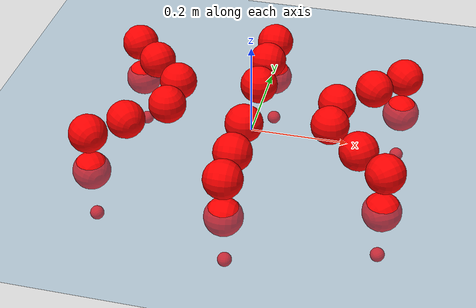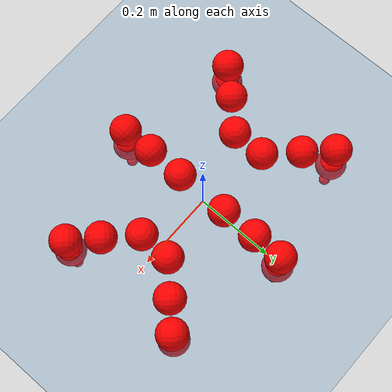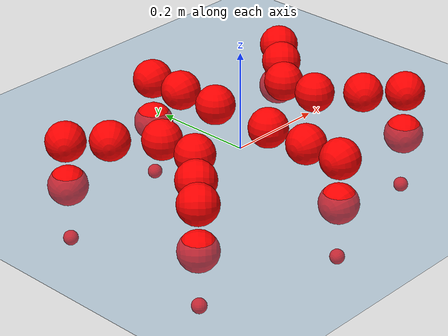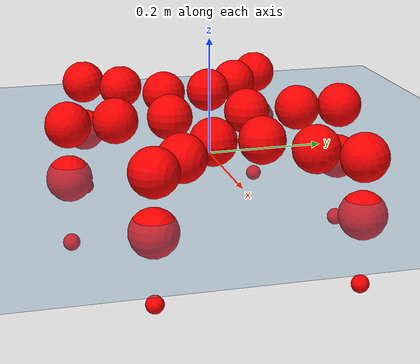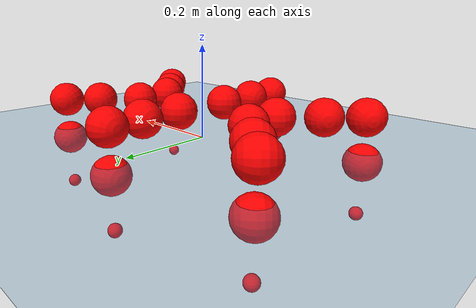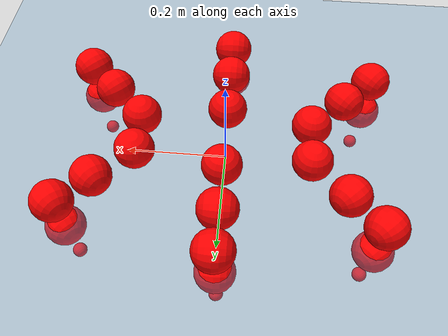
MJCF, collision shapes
<mujoco model="Golem">
  <compiler angle="radian" assetdir="assets" balanceinertia="true" inertiafromgeom="false"/>

  <option timestep="0.005" density="1.2" viscosity="2e-05"/>

  <size nkey="1"/>

  <visual>
    <quality shadowsize="8192"/>
    <map shadowclip="0.5"/>
  </visual>

  <default>
    <default class="/">
      <joint armature="0.01" damping="0.01" frictionloss="0.01"/>
      <geom contype="0" conaffinity="0" group="1" solref="-1000 -80"/>
      <site size="0.01 0.005 0.005" group="5"/>
      <general forcelimited="true" biastype="affine" gainprm="25" biasprm="0 -25 -0.5"/>
      <default class="visual">
        <geom type="mesh" group="2"/>
      </default>
      <default class="collision">
        <geom group="3"/>
      </default>
      <default class="foot">
        <geom size="0.01 0 0" condim="6" group="4" priority="1" solimp="0.015 1 0.01"/>
      </default>
      <default class="reward_collision_sphere">
        <geom group="5" rgba="1 0 0 1"/>
      </default>
    </default>
  </default>

  <asset>
    <texture type="skybox" colorspace="auto" name="//unnamed_texture_0" builtin="gradient" rgb1="0.95 0.95 0.95" rgb2="0.95 0.95 0.95" width="100" height="600"/>
    <texture type="2d" colorspace="auto" name="texplane" builtin="checker" rgb1="0.345 0.575 0.748" rgb2="0.345 0.575 0.748" markrgb="1 1 1" width="512" height="512"/>
    <material name="MatPlane" class="/" texture="texplane" texuniform="true" texrepeat="2 2" specular="0.9"/>
    <mesh name="body" class="/" file="body.stl" scale="0.001 0.001 0.001"/>
    <mesh name="coxa" class="/" file="coxa.stl" scale="0.001 0.001 0.001"/>
    <mesh name="femur" class="/" file="femur.stl" scale="0.001 0.001 0.001"/>
    <mesh name="tibia" class="/" file="tibia.stl" scale="0.001 0.001 0.001"/>
    <mesh name="tarsus" class="/" file="tarsus.stl" scale="0.001 0.001 0.001"/>
  </asset>

  <worldbody>
    <geom name="floor" class="/" size="100 100 0.125" type="plane" group="0" material="MatPlane"/>
    <light name="toplight_shadow" class="/" pos="0 0 5" dir="0.0990148 0.0990148 -0.990148" type="directional" ambient="0.04 0.04 0.04" diffuse="0.55 0.55 0.55" specular="0.12 0.12 0.12"/>
    <light name="toplight_fill" class="/" pos="0 0 5" dir="0.0990148 0.0990148 -0.990148" type="directional" castshadow="false" ambient="0.04 0.04 0.04" diffuse="0.3 0.3 0.3" specular="0.08 0.08 0.08"/>
    <body name="trunk" pos="0.00137895 -0.000702123 -0.000868826" quat="1 5.35666e-06 -4.51781e-05 -1.02239e-05">
      <inertial pos="0.000213101 8.33387e-05 -0.00332766" quat="0.999999 -0.000187517 -0.00136807 -0.0007937" mass="3.28827" diaginertia="0.0134169 0.00233778 0.0154823"/>
      <joint name="//unnamed_joint_0" type="free"/>
      <geom name="//unnamed_geom_1" class="/" pos="0 0 0.0699303" quat="1 0 0 0" type="mesh" rgba="0.9 0.9 0.9 1" mesh="body"/>
      <site name="imu" class="/" pos="0.143171 0.0042098 0.106839" size="0.00968679"/>
      <camera name="track" class="/" pos="0 -1.50362 0" quat="0.707107 0.707107 0 0" mode="trackcom"/>
      <camera name="ego_camera" class="/" pos="0.138004 0 0.109266" quat="-0.5 -0.5 0.5 0.5"/>
      <body name="coxa_RR" pos="-0.189185 -0.0630878 0.0695608" quat="0.38273 0.000427577 3.42731e-05 -0.92386">
        <inertial pos="-0.000104589 -0.0015632 0.00156323" quat="1 -7.72011e-05 -0.000454908 0.000765793" mass="0.17877" diaginertia="0.0135746 0.00241551 0.0156128"/>
        <joint name="coxa_joint_RR" class="/" pos="0 0 0" axis="0.00311879 -0.00610088 -0.999977" range="-3.13762 3.14203" armature="0.00942784" damping="0.000570904" frictionloss="0.00970303"/>
        <geom name="//unnamed_geom_2" class="/" type="mesh" rgba="0.2 0.2 0.2 1" mesh="coxa"/>
        <geom name="//unnamed_geom_3" class="reward_collision_sphere" size="0.0387472" pos="-0.031847 0 0"/>
        <body name="femur_RR" pos="0.0622462 0.000800381 -0.000264719" quat="0.499867 -0.499967 0.500085 0.500081">
          <inertial pos="0.000983025 0.000798693 0.000288905" quat="0.999996 0.000614852 0.00231294 0.00141045" mass="0.182229" diaginertia="0.0134899 0.0023924 0.0159649"/>
          <joint name="femur_joint_RR" class="/" pos="0 0 0" axis="-0.00138954 0.00267624 -0.999995" range="-3.15526 3.14348" armature="0.00980488" damping="0" frictionloss="0.00994348"/>
          <geom name="//unnamed_geom_4" class="/" type="mesh" rgba="0.9 0.9 0.9 1" mesh="femur"/>
          <geom name="//unnamed_geom_5" class="reward_collision_sphere" size="0.0387472"/>
          <body name="tibia_RR" pos="9.16023e-05 -0.0833218 0.00203737" quat="0.000669997 1 -2.22549e-05 3.74512e-05">
            <inertial pos="-0.000727535 0.000127649 0.000211432" quat="0.999999 -0.00123823 0.000704128 0.000795671" mass="0.183803" diaginertia="0.0135223 0.00243208 0.0158175"/>
            <joint name="tibia_joint_RR" class="/" pos="0 0 0" axis="-0.00223555 -0.000476538 0.999997" range="-3.15892 3.1262" armature="0.00947064" damping="0.00295101" frictionloss="0.00968288"/>
            <geom name="//unnamed_geom_6" class="/" type="mesh" rgba="0.2 0.2 0.2 1" mesh="tibia"/>
            <geom name="//unnamed_geom_7" class="reward_collision_sphere" size="0.0387472"/>
            <body name="tarsus_RR" pos="0.093535 0.00118048 0.000532875" quat="1 -2.7726e-05 5.41659e-05 5.45938e-05">
              <inertial pos="0.0656892 0.00033706 -0.00102481" quat="0.500096 0.500722 0.499683 0.499498" mass="0.181356" diaginertia="0.0133959 0.00236634 0.0154713"/>
              <joint name="tarsus_joint_RR" class="/" pos="0 0 0" axis="-0.00441636 0.0075148 0.999962" stiffness="0.00307481" range="-3.15278 3.12868" armature="0.00983941" damping="0.0402376" frictionloss="0.0101537"/>
              <geom name="//unnamed_geom_8" class="/" type="mesh" rgba="0.9 0.9 0.9 1" mesh="tarsus"/>
              <geom name="foot_1" class="foot" size="0.00951197" pos="0.118895 0 0" quat="0 -0.707107 0 0.707107"/>
              <geom name="//unnamed_geom_10" class="reward_collision_sphere" size="0.0387472"/>
              <geom name="//unnamed_geom_11" class="reward_collision_sphere" size="0.0145302" pos="0.114118 0 0"/>
              <site name="foot_1" class="foot" pos="0.118895 0 0" quat="0 -0.707107 0 0.707107" size="0.00968679"/>
            </body>
          </body>
        </body>
      </body>
      <body name="coxa_RM" pos="-0.000179587 -0.100582 0.0699006" quat="0.707281 7.04808e-05 7.90883e-05 -0.706933">
        <inertial pos="0.000118197 0.000104612 0.00165109" quat="0.999988 0.00475196 0.000979074 0.000515407" mass="0.18436" diaginertia="0.0136585 0.00236102 0.0155337"/>
        <joint name="coxa_joint_RM" class="/" pos="0 0 0" axis="-0.00327639 0.00141326 -0.999994" range="-3.12096 3.14591" armature="0.0095531" damping="0.00768816" frictionloss="0.00875555"/>
        <geom name="//unnamed_geom_12" class="/" type="mesh" rgba="0.2 0.2 0.2 1" mesh="coxa"/>
        <geom name="//unnamed_geom_13" class="reward_collision_sphere" size="0.0387472" pos="-0.031847 0 0"/>
        <body name="femur_RM" pos="0.0614931 -0.000135688 -0.000180866" quat="0.500127 -0.500326 0.500035 0.499511">
          <inertial pos="-3.44764e-05 0.000752518 0.000104474" quat="0.999992 -0.0014182 -0.00347137 0.00118575" mass="0.186027" diaginertia="0.0137555 0.00243846 0.0159163"/>
          <joint name="femur_joint_RM" class="/" pos="0 0 0" axis="0.00372863 0.00143705 -0.999992" range="-3.13303 3.14059" armature="0.0101648" damping="0.00969933" frictionloss="0.00966467"/>
          <geom name="//unnamed_geom_14" class="/" type="mesh" rgba="0.9 0.9 0.9 1" mesh="femur"/>
          <geom name="//unnamed_geom_15" class="reward_collision_sphere" size="0.0387472"/>
          <body name="tibia_RM" pos="0.000910729 -0.0799558 0.000961574" quat="-0.000158237 1 7.16996e-06 3.8166e-05">
            <inertial pos="-0.000235935 -0.00171961 -0.000322434" quat="0.999989 -0.00111187 0.00177639 -0.00410421" mass="0.181866" diaginertia="0.0136533 0.00247755 0.0156454"/>
            <joint name="tibia_joint_RM" class="/" pos="0 0 0" axis="0.000379889 -0.000343963 1" range="-3.15838 3.17697" armature="0.00965241" damping="0.0120937" frictionloss="0.00968333"/>
            <geom name="//unnamed_geom_16" class="/" type="mesh" rgba="0.2 0.2 0.2 1" mesh="tibia"/>
            <geom name="//unnamed_geom_17" class="reward_collision_sphere" size="0.0387472"/>
            <body name="tarsus_RM" pos="0.0931457 0.000244717 0.000139547" quat="1 4.71738e-05 7.50242e-05 3.62748e-05">
              <inertial pos="0.0635316 0.00086923 0.000386479" quat="0.503862 0.495683 0.496816 0.503583" mass="0.184907" diaginertia="0.0133261 0.00241939 0.0155099"/>
              <joint name="tarsus_joint_RM" class="/" pos="0 0 0" axis="-0.000662719 0.000408578 1" range="-3.14974 3.14591" armature="0.00920789" damping="0.00688008" frictionloss="0.00965219"/>
              <geom name="//unnamed_geom_18" class="/" type="mesh" rgba="0.9 0.9 0.9 1" mesh="tarsus"/>
              <geom name="foot_2" class="foot" size="0.00958722" pos="0.118895 0 0" quat="0 -0.707107 0 0.707107"/>
              <geom name="//unnamed_geom_20" class="reward_collision_sphere" size="0.0387472"/>
              <geom name="//unnamed_geom_21" class="reward_collision_sphere" size="0.0145302" pos="0.114118 0 0"/>
              <site name="foot_2" class="foot" pos="0.118895 0 0" quat="0 -0.707107 0 0.707107" size="0.00968679"/>
            </body>
          </body>
        </body>
      </body>
      <body name="coxa_RF" pos="0.189534 -0.0611175 0.0715962" quat="0.923988 0.000188026 5.23951e-05 -0.382421">
        <inertial pos="0.000633351 -0.000887742 -0.000172913" quat="1 -0.000114814 0.000138149 0.000158589" mass="0.183081" diaginertia="0.0134754 0.00239114 0.015857"/>
        <joint name="coxa_joint_RF" class="/" pos="0 0 0" axis="0.00295281 -0.00309255 -0.999991" range="-3.14477 3.13546" armature="0.00997617" damping="0.0137971" frictionloss="0.00973049"/>
        <geom name="//unnamed_geom_22" class="/" type="mesh" rgba="0.2 0.2 0.2 1" mesh="coxa"/>
        <geom name="//unnamed_geom_23" class="reward_collision_sphere" size="0.0387472" pos="-0.031847 0 0"/>
        <body name="femur_RF" pos="0.0624131 0.00017618 -0.00166997" quat="0.499833 -0.500211 0.500114 0.499842">
          <inertial pos="-0.000808165 0.000260299 -0.000290191" quat="0.999988 0.00287837 0.00385249 0.00043081" mass="0.184056" diaginertia="0.0134792 0.00244999 0.0159853"/>
          <joint name="femur_joint_RF" class="/" pos="0 0 0" axis="-9.36521e-06 -0.000132779 -1" range="-3.16921 3.12612" armature="0.00932809" damping="0.0114243" frictionloss="0.00978062"/>
          <geom name="//unnamed_geom_24" class="/" type="mesh" rgba="0.9 0.9 0.9 1" mesh="femur"/>
          <geom name="//unnamed_geom_25" class="reward_collision_sphere" size="0.0387472"/>
          <body name="tibia_RF" pos="-0.000785516 -0.0814972 0.00140553" quat="2.36409e-05 1 2.8806e-05 7.93173e-05">
            <inertial pos="-0.00159103 0.000393655 -5.82999e-05" quat="1 -0.000156703 0.000142956 0.00017237" mass="0.184637" diaginertia="0.0136195 0.00238825 0.0156009"/>
            <joint name="tibia_joint_RF" class="/" pos="0 0 0" axis="-0.00542252 -0.00240994 0.999982" range="-3.13473 3.10706" armature="0.0100494" damping="0.0105707" frictionloss="0.00971161"/>
            <geom name="//unnamed_geom_26" class="/" type="mesh" rgba="0.2 0.2 0.2 1" mesh="tibia"/>
            <geom name="//unnamed_geom_27" class="reward_collision_sphere" size="0.0387472"/>
            <body name="tarsus_RF" pos="0.0932331 0.0010183 0.000953899" quat="1 0.000532325 0.000282476 -0.00034184">
              <inertial pos="0.063725 0.000304211 -0.000164241" quat="0.501073 0.499755 0.499418 0.499752" mass="0.180673" diaginertia="0.013518 0.00239124 0.0154041"/>
              <joint name="tarsus_joint_RF" class="/" pos="0 0 0" axis="-0.000912508 -0.000231806 1" range="-3.12136 3.14104" armature="0.00935639" damping="0" frictionloss="0.0101366"/>
              <geom name="//unnamed_geom_28" class="/" type="mesh" rgba="0.9 0.9 0.9 1" mesh="tarsus"/>
              <geom name="foot_3" class="foot" size="0.00967774" pos="0.118895 0 0" quat="0 -0.707107 0 0.707107"/>
              <geom name="//unnamed_geom_30" class="reward_collision_sphere" size="0.0387472"/>
              <geom name="//unnamed_geom_31" class="reward_collision_sphere" size="0.0145302" pos="0.114118 0 0"/>
              <site name="foot_3" class="foot" pos="0.118895 0 0" quat="0 -0.707107 0 0.707107" size="0.00968679"/>
            </body>
          </body>
        </body>
      </body>
      <body name="coxa_LR" pos="-0.189762 0.0653089 0.0697275" quat="0.382638 4.33925e-06 2.70226e-05 0.923898">
        <inertial pos="-0.00101783 -0.00116737 -0.00115047" quat="0.99997 0.00452052 0.0059172 0.00210199" mass="0.18228" diaginertia="0.0134095 0.00245509 0.0154314"/>
        <joint name="coxa_joint_LR" class="/" pos="0 0 0" axis="-0.00659608 0.0071696 -0.999953" range="-3.13173 3.15626" armature="0.0100368" damping="0.0135061" frictionloss="0.00952347"/>
        <geom name="//unnamed_geom_32" class="/" type="mesh" rgba="0.2 0.2 0.2 1" mesh="coxa"/>
        <geom name="//unnamed_geom_33" class="reward_collision_sphere" size="0.0387472" pos="-0.031847 0 0"/>
        <body name="femur_LR" pos="0.0639186 -0.00175674 -0.0013285" quat="0.499916 -0.500123 0.499941 0.50002">
          <inertial pos="0.000656794 0.000216868 -0.000233333" quat="0.999991 -0.0017395 -0.00365028 0.000851696" mass="0.181666" diaginertia="0.0134451 0.00240444 0.0154775"/>
          <joint name="femur_joint_LR" class="/" pos="0 0 0" axis="0.00139771 -0.000662163 0.999999" range="-3.1498 3.13682" armature="0.00976694" damping="0.0110676" frictionloss="0.00886397"/>
          <geom name="//unnamed_geom_34" class="/" type="mesh" rgba="0.9 0.9 0.9 1" mesh="femur"/>
          <geom name="//unnamed_geom_35" class="reward_collision_sphere" size="0.0387472"/>
          <body name="tibia_LR" pos="0.000326801 -0.0813494 -0.000790207" quat="-0.000326679 1 -0.000456959 6.28486e-05">
            <inertial pos="-0.000235212 2.69368e-05 0.000106122" quat="0.999997 -0.00135789 -0.000381152 0.00180849" mass="0.178139" diaginertia="0.013305 0.0023864 0.0152944"/>
            <joint name="tibia_joint_LR" class="/" pos="0 0 0" axis="-4.08609e-05 -0.00647222 -0.999979" stiffness="0.000909214" range="-3.1213 3.13293" armature="0.00958466" damping="0.0074186" frictionloss="0.009775"/>
            <geom name="//unnamed_geom_36" class="/" type="mesh" rgba="0.2 0.2 0.2 1" mesh="tibia"/>
            <geom name="//unnamed_geom_37" class="reward_collision_sphere" size="0.0387472"/>
            <body name="tarsus_LR" pos="0.0932819 -0.000159015 0.00173037" quat="1 0.000195767 0.000117051 0.000678196">
              <inertial pos="0.0660459 6.58507e-05 -0.00151497" quat="0.499637 0.500557 0.499305 0.500499" mass="0.181489" diaginertia="0.0134104 0.00238496 0.0154161"/>
              <joint name="tarsus_joint_LR" class="/" pos="0 0 0" axis="-5.82112e-05 0.000834122 -1" range="-3.15095 3.12675" armature="0.00987788" damping="0.000815789" frictionloss="0.00930877"/>
              <geom name="//unnamed_geom_38" class="/" type="mesh" rgba="0.9 0.9 0.9 1" mesh="tarsus"/>
              <geom name="foot_4" class="foot" size="0.00926724" pos="0.118895 0 0" quat="0.707107 0 -0.707107 0"/>
              <geom name="//unnamed_geom_40" class="reward_collision_sphere" size="0.0387472"/>
              <geom name="//unnamed_geom_41" class="reward_collision_sphere" size="0.0145302" pos="0.114118 0 0"/>
              <site name="foot_4" class="foot" pos="0.118895 0 0" quat="0.707107 0 -0.707107 0" size="0.00968679"/>
            </body>
          </body>
        </body>
      </body>
      <body name="coxa_LM" pos="-0.000356579 0.0986148 0.0708142" quat="0.706929 -5.90837e-05 -0.000190592 0.707285">
        <inertial pos="-0.000128802 0.000815843 0.00115228" quat="0.999997 6.96615e-06 0.0007725 0.00232148" mass="0.183543" diaginertia="0.0137621 0.00244191 0.0157454"/>
        <joint name="coxa_joint_LM" class="/" pos="0 0 0" axis="-5.26728e-05 0.00122068 -0.999999" range="-3.12755 3.14038" armature="0.00922415" damping="0.00554244" frictionloss="0.0098334"/>
        <geom name="//unnamed_geom_42" class="/" type="mesh" rgba="0.2 0.2 0.2 1" mesh="coxa"/>
        <geom name="//unnamed_geom_43" class="reward_collision_sphere" size="0.0387472" pos="-0.031847 0 0"/>
        <body name="femur_LM" pos="0.0601095 0.00070737 0.000121519" quat="0.500141 -0.499948 0.500099 0.499813">
          <inertial pos="-0.00108546 -0.000738867 0.0017648" quat="0.999977 -0.00192223 0.0051189 -0.00396278" mass="0.180951" diaginertia="0.0132747 0.00233519 0.0153427"/>
          <joint name="femur_joint_LM" class="/" pos="0 0 0" axis="-0.000393231 -0.00103238 0.999999" range="-3.14148 3.13209" armature="0.00934899" damping="0.00376005" frictionloss="0.0097685"/>
          <geom name="//unnamed_geom_44" class="/" type="mesh" rgba="0.9 0.9 0.9 1" mesh="femur"/>
          <geom name="//unnamed_geom_45" class="reward_collision_sphere" size="0.0387472"/>
          <body name="tibia_LM" pos="0.00115501 -0.077939 -8.11607e-05" quat="2.59073e-05 1 -0.000305396 -0.000898278">
            <inertial pos="0.000119095 -0.00247696 -0.000727928" quat="0.999998 0.00200433 -0.000694245 0.000255127" mass="0.183575" diaginertia="0.0133528 0.00242909 0.015429"/>
            <joint name="tibia_joint_LM" class="/" pos="0 0 0" axis="-5.90677e-05 -4.14132e-05 -1" range="-3.13709 3.1285" armature="0.0101332" damping="0" frictionloss="0.0101122"/>
            <geom name="//unnamed_geom_46" class="/" type="mesh" rgba="0.2 0.2 0.2 1" mesh="tibia"/>
            <geom name="//unnamed_geom_47" class="reward_collision_sphere" size="0.0387472"/>
            <body name="tarsus_LM" pos="0.0937728 -0.000828434 -0.00123811" quat="1 0.000224835 0.000713716 0.00052388">
              <inertial pos="0.0642811 0.000545043 0.00083297" quat="0.500111 0.500031 0.499842 0.500016" mass="0.177122" diaginertia="0.0133405 0.00234685 0.0152354"/>
              <joint name="tarsus_joint_LM" class="/" pos="0 0 0" axis="0.0021404 0.00130627 -0.999997" stiffness="0.00125639" range="-3.10442 3.13614" armature="0.0101374" damping="0" frictionloss="0.00923727"/>
              <geom name="//unnamed_geom_48" class="/" type="mesh" rgba="0.9 0.9 0.9 1" mesh="tarsus"/>
              <geom name="foot_5" class="foot" size="0.00939867" pos="0.118895 0 0" quat="0.707107 0 -0.707107 0"/>
              <geom name="//unnamed_geom_50" class="reward_collision_sphere" size="0.0387472"/>
              <geom name="//unnamed_geom_51" class="reward_collision_sphere" size="0.0145302" pos="0.114118 0 0"/>
              <site name="foot_5" class="foot" pos="0.118895 0 0" quat="0.707107 0 -0.707107 0" size="0.00968679"/>
            </body>
          </body>
        </body>
      </body>
      <body name="coxa_LF" pos="0.190581 0.064417 0.0683516" quat="0.923918 6.33385e-05 -3.25507e-05 0.38259">
        <inertial pos="0.000204938 0.00018731 0.00124877" quat="0.999999 -0.00112157 0.000440434 -0.000560874" mass="0.180116" diaginertia="0.0132291 0.00235952 0.0151861"/>
        <joint name="coxa_joint_LF" class="/" pos="0 0 0" axis="0.00404203 -0.00216507 -0.999989" range="-3.11895 3.17189" armature="0.0100971" damping="0.000549735" frictionloss="0.00986409"/>
        <geom name="//unnamed_geom_52" class="/" type="mesh" rgba="0.2 0.2 0.2 1" mesh="coxa"/>
        <geom name="//unnamed_geom_53" class="reward_collision_sphere" size="0.0387472" pos="-0.031847 0 0"/>
        <body name="femur_LF" pos="0.0628084 -0.000654387 -0.000406405" quat="0.500545 -0.499932 0.499906 0.499616">
          <inertial pos="0.00159627 -0.000233669 -9.99929e-05" quat="0.999999 0.00125692 -0.000520634 0.000414895" mass="0.181951" diaginertia="0.0135392 0.00241791 0.0157581"/>
          <joint name="femur_joint_LF" class="/" pos="0 0 0" axis="-0.00456678 -0.00047774 0.999989" range="-3.15106 3.14408" armature="0.0100402" damping="0.00287701" frictionloss="0.00977095"/>
          <geom name="//unnamed_geom_54" class="/" type="mesh" rgba="0.9 0.9 0.9 1" mesh="femur"/>
          <geom name="//unnamed_geom_55" class="reward_collision_sphere" size="0.0387472"/>
          <body name="tibia_LF" pos="0.00109966 -0.0803614 0.000387945" quat="0.000215439 1 0.000200602 -0.000101514">
            <inertial pos="-0.000131703 0.000164705 -0.000972161" quat="0.999998 -0.00118924 -0.00162157 -0.000203364" mass="0.183977" diaginertia="0.0135565 0.00240872 0.0155459"/>
            <joint name="tibia_joint_LF" class="/" pos="0 0 0" axis="0.0010909 0.000681951 -0.999999" range="-3.14155 3.1431" armature="0.0100053" damping="0.000922045" frictionloss="0.00923723"/>
            <geom name="//unnamed_geom_56" class="/" type="mesh" rgba="0.2 0.2 0.2 1" mesh="tibia"/>
            <geom name="//unnamed_geom_57" class="reward_collision_sphere" size="0.0387472"/>
            <body name="tarsus_LF" pos="0.0931543 -0.00020825 -0.00071559" quat="1 -0.000611323 0.000204384 6.10471e-05">
              <inertial pos="0.0636758 0.000442931 0.00103398" quat="0.49979 0.500027 0.500402 0.49978" mass="0.178933" diaginertia="0.0134454 0.00239962 0.0153157"/>
              <joint name="tarsus_joint_LF" class="/" pos="0 0 0" axis="-0.00281457 0.0051166 -0.999983" stiffness="0.0267156" range="-3.1416 3.11786" armature="0.00967116" damping="0.0273618" frictionloss="0.00960623"/>
              <geom name="//unnamed_geom_58" class="/" type="mesh" rgba="0.9 0.9 0.9 1" mesh="tarsus"/>
              <geom name="foot_6" class="foot" size="0.0097822" pos="0.118895 0 0" quat="0.707107 0 -0.707107 0"/>
              <geom name="//unnamed_geom_60" class="reward_collision_sphere" size="0.0387472"/>
              <geom name="//unnamed_geom_61" class="reward_collision_sphere" size="0.0145302" pos="0.114118 0 0"/>
              <site name="foot_6" class="foot" pos="0.118895 0 0" quat="0.707107 0 -0.707107 0" size="0.00968679"/>
            </body>
          </body>
        </body>
      </body>
    </body>
  </worldbody>

  <contact>
    <pair class="/" geom1="floor" geom2="foot_1" name="//unnamed_contact_0"/>
    <pair class="/" geom1="floor" geom2="foot_2" name="//unnamed_contact_1"/>
    <pair class="/" geom1="floor" geom2="foot_3" name="//unnamed_contact_2"/>
    <pair class="/" geom1="floor" geom2="foot_4" name="//unnamed_contact_3"/>
    <pair class="/" geom1="floor" geom2="foot_5" name="//unnamed_contact_4"/>
    <pair class="/" geom1="floor" geom2="foot_6" name="//unnamed_contact_5"/>
  </contact>

  <actuator>
    <general name="coxa_joint_RR" class="/" joint="coxa_joint_RR" forcerange="-7.19482 7.19482" gainprm="23.3385" biasprm="0 -23.3385 -0.50494"/>
    <general name="femur_joint_RR" class="/" joint="femur_joint_RR" forcerange="-7.09096 7.09096" gainprm="23.3385" biasprm="0 -23.3385 -0.50494"/>
    <general name="tibia_joint_RR" class="/" joint="tibia_joint_RR" forcerange="-7.12727 7.12727" gainprm="23.3385" biasprm="0 -23.3385 -0.50494"/>
    <general name="tarsus_joint_RR" class="/" joint="tarsus_joint_RR" forcerange="-7.09909 7.09909" gainprm="23.3385" biasprm="0 -23.3385 -0.50494"/>
    <general name="coxa_joint_RM" class="/" joint="coxa_joint_RM" forcerange="-6.66252 6.66252" gainprm="23.3385" biasprm="0 -23.3385 -0.50494"/>
    <general name="femur_joint_RM" class="/" joint="femur_joint_RM" forcerange="-7.01498 7.01498" gainprm="23.3385" biasprm="0 -23.3385 -0.50494"/>
    <general name="tibia_joint_RM" class="/" joint="tibia_joint_RM" forcerange="-7.23375 7.23375" gainprm="23.3385" biasprm="0 -23.3385 -0.50494"/>
    <general name="tarsus_joint_RM" class="/" joint="tarsus_joint_RM" forcerange="-7.17481 7.17481" gainprm="23.3385" biasprm="0 -23.3385 -0.50494"/>
    <general name="coxa_joint_RF" class="/" joint="coxa_joint_RF" forcerange="-6.74189 6.74189" gainprm="23.3385" biasprm="0 -23.3385 -0.50494"/>
    <general name="femur_joint_RF" class="/" joint="femur_joint_RF" forcerange="-7.29515 7.29515" gainprm="23.3385" biasprm="0 -23.3385 -0.50494"/>
    <general name="tibia_joint_RF" class="/" joint="tibia_joint_RF" forcerange="-6.61822 6.61822" gainprm="23.3385" biasprm="0 -23.3385 -0.50494"/>
    <general name="tarsus_joint_RF" class="/" joint="tarsus_joint_RF" forcerange="-6.83045 6.83045" gainprm="23.3385" biasprm="0 -23.3385 -0.50494"/>
    <general name="coxa_joint_LR" class="/" joint="coxa_joint_LR" forcerange="-7.07963 7.07963" gainprm="23.3385" biasprm="0 -23.3385 -0.50494"/>
    <general name="femur_joint_LR" class="/" joint="femur_joint_LR" forcerange="-7.01815 7.01815" gainprm="23.3385" biasprm="0 -23.3385 -0.50494"/>
    <general name="tibia_joint_LR" class="/" joint="tibia_joint_LR" forcerange="-7.1311 7.1311" gainprm="23.3385" biasprm="0 -23.3385 -0.50494"/>
    <general name="tarsus_joint_LR" class="/" joint="tarsus_joint_LR" forcerange="-6.86438 6.86438" gainprm="23.3385" biasprm="0 -23.3385 -0.50494"/>
    <general name="coxa_joint_LM" class="/" joint="coxa_joint_LM" forcerange="-7.20141 7.20141" gainprm="23.3385" biasprm="0 -23.3385 -0.50494"/>
    <general name="femur_joint_LM" class="/" joint="femur_joint_LM" forcerange="-7.07104 7.07104" gainprm="23.3385" biasprm="0 -23.3385 -0.50494"/>
    <general name="tibia_joint_LM" class="/" joint="tibia_joint_LM" forcerange="-6.989 6.989" gainprm="23.3385" biasprm="0 -23.3385 -0.50494"/>
    <general name="tarsus_joint_LM" class="/" joint="tarsus_joint_LM" forcerange="-7.027 7.027" gainprm="23.3385" biasprm="0 -23.3385 -0.50494"/>
    <general name="coxa_joint_LF" class="/" joint="coxa_joint_LF" forcerange="-6.59237 6.59237" gainprm="23.3385" biasprm="0 -23.3385 -0.50494"/>
    <general name="femur_joint_LF" class="/" joint="femur_joint_LF" forcerange="-7.0019 7.0019" gainprm="23.3385" biasprm="0 -23.3385 -0.50494"/>
    <general name="tibia_joint_LF" class="/" joint="tibia_joint_LF" forcerange="-7.08583 7.08583" gainprm="23.3385" biasprm="0 -23.3385 -0.50494"/>
    <general name="tarsus_joint_LF" class="/" joint="tarsus_joint_LF" forcerange="-7.28842 7.28842" gainprm="23.3385" biasprm="0 -23.3385 -0.50494"/>
  </actuator>

  <sensor>
    <gyro site="imu" name="imu_angular_velocity"/>
    <velocimeter site="imu" name="imu_linear_velocity"/>
    <framelinvel objtype="site" objname="foot_1" name="foot_1_global_linear_velocity"/>
    <framelinvel objtype="site" objname="foot_2" name="foot_2_global_linear_velocity"/>
    <framelinvel objtype="site" objname="foot_3" name="foot_3_global_linear_velocity"/>
    <framelinvel objtype="site" objname="foot_4" name="foot_4_global_linear_velocity"/>
    <framelinvel objtype="site" objname="foot_5" name="foot_5_global_linear_velocity"/>
    <framelinvel objtype="site" objname="foot_6" name="foot_6_global_linear_velocity"/>
  </sensor>

  <keyframe>
    <key name="home" qpos="0 0 0.1457 1 0 0 0 0 0 0 0 0 0 0 0 0 0 0 0 0 0 0 0 0 0 0 0 0 0 0 0"/>
  </keyframe>
</mujoco>
